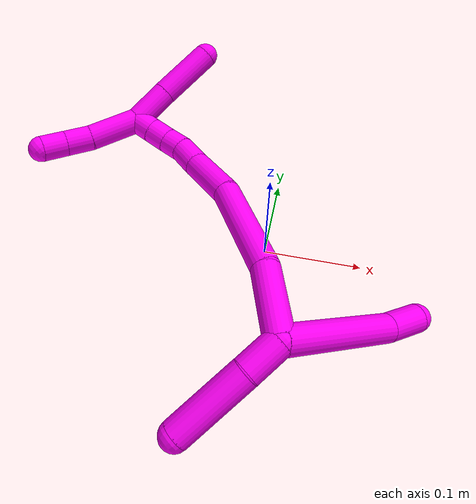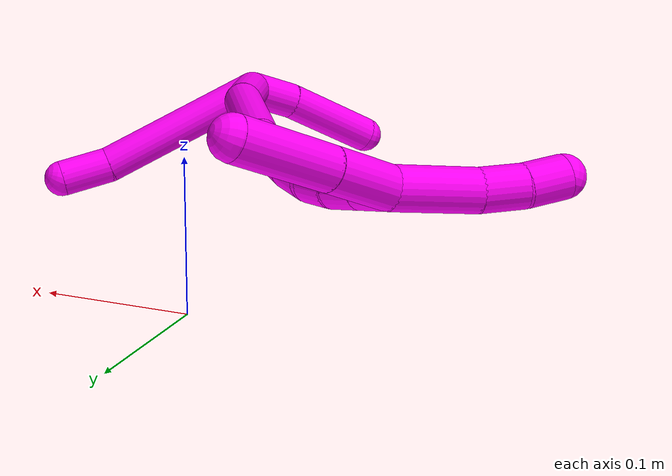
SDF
<sdf version="1.7">
 <world name="default">
  <model name="10">
   <static>0</static>
   <link name="10">
    <collision name="collision-cylinder-e_1_2_8">
     <pose>0.043213 -0.003716 0.038393 0.096478 0.842079 0.043232</pose>
     <geometry><cylinder><radius>0.0125</radius><length>0.115847</length></cylinder></geometry>
     <surface>
      <friction><ode><mu>1.16</mu><mu2>1.16</mu2><slip1>0</slip1><slip2>0</slip2></ode></friction>
      <contact><ode><kp>1e+06</kp><kd>1</kd><max_vel>0</max_vel><min_depth>0.001</min_depth></ode></contact>
     </surface>
    </collision>
    <visual name="visual-cylinder-e_1_2_8">
     <pose>0.043213 -0.003716 0.038393 0.096478 0.842079 0.043232</pose>
     <geometry><cylinder><radius>0.0125</radius><length>0.115847</length></cylinder></geometry>
     <material><ambient>1 0 0.964706 1</ambient></material>
    </visual>
    <collision name="collision-cylinder-e_2_8_6">
     <pose>0.096374 -0.008454 0.090626 0.073746 0.621932 0.023711</pose>
     <geometry><cylinder><radius>0.0125</radius><length>0.034153</length></cylinder></geometry>
     <surface>
      <friction><ode><mu>1.16</mu><mu2>1.16</mu2><slip1>0</slip1><slip2>0</slip2></ode></friction>
      <contact><ode><kp>1e+06</kp><kd>1</kd><max_vel>0</max_vel><min_depth>0.001</min_depth></ode></contact>
     </surface>
    </collision>
    <visual name="visual-cylinder-e_2_8_6">
     <pose>0.096374 -0.008454 0.090626 0.073746 0.621932 0.023711</pose>
     <geometry><cylinder><radius>0.0125</radius><length>0.034153</length></cylinder></geometry>
     <material><ambient>1 0 0.964706 1</ambient></material>
    </visual>
    <collision name="collision-cylinder-e_1_2_9">
     <pose>-0.00058 -0.000536 -0.016377 3.10886 -0.035411 -1.6494</pose>
     <geometry><cylinder><radius>0.0125</radius><length>0.032792</length></cylinder></geometry>
     <surface>
      <friction><ode><mu>1.16</mu><mu2>1.16</mu2><slip1>0</slip1><slip2>0</slip2></ode></friction>
      <contact><ode><kp>1e+06</kp><kd>1</kd><max_vel>0</max_vel><min_depth>0.001</min_depth></ode></contact>
     </surface>
    </collision>
    <visual name="visual-cylinder-e_1_2_9">
     <pose>-0.00058 -0.000536 -0.016377 3.10886 -0.035411 -1.6494</pose>
     <geometry><cylinder><radius>0.0125</radius><length>0.032792</length></cylinder></geometry>
     <material><ambient>1 0 0.964706 1</ambient></material>
    </visual>
    <collision name="collision-cylinder-e_2_9_5">
     <pose>0.001496 0.000456 -0.066218 -3.09596 0.079139 -2.09582</pose>
     <geometry><cylinder><radius>0.0125</radius><length>0.067208</length></cylinder></geometry>
     <surface>
      <friction><ode><mu>1.16</mu><mu2>1.16</mu2><slip1>0</slip1><slip2>0</slip2></ode></friction>
      <contact><ode><kp>1e+06</kp><kd>1</kd><max_vel>0</max_vel><min_depth>0.001</min_depth></ode></contact>
     </surface>
    </collision>
    <visual name="visual-cylinder-e_2_9_5">
     <pose>0.001496 0.000456 -0.066218 -3.09596 0.079139 -2.09582</pose>
     <geometry><cylinder><radius>0.0125</radius><length>0.067208</length></cylinder></geometry>
     <material><ambient>1 0 0.964706 1</ambient></material>
    </visual>
    <collision name="collision-cylinder-e_1_2_10">
     <pose>-0.000274 0.028273 0.015081 -1.08077 -0.008537 0.005122</pose>
     <geometry><cylinder><radius>0.0125</radius><length>0.064089</length></cylinder></geometry>
     <surface>
      <friction><ode><mu>1.16</mu><mu2>1.16</mu2><slip1>0</slip1><slip2>0</slip2></ode></friction>
      <contact><ode><kp>1e+06</kp><kd>1</kd><max_vel>0</max_vel><min_depth>0.001</min_depth></ode></contact>
     </surface>
    </collision>
    <visual name="visual-cylinder-e_1_2_10">
     <pose>-0.000274 0.028273 0.015081 -1.08077 -0.008537 0.005122</pose>
     <geometry><cylinder><radius>0.0125</radius><length>0.064089</length></cylinder></geometry>
     <material><ambient>1 0 0.964706 1</ambient></material>
    </visual>
    <collision name="collision-cylinder-e_2_10_11">
     <pose>-0.000136 0.102138 0.041991 -1.31696 0.008728 -0.006753</pose>
     <geometry><cylinder><radius>0.0125</radius><length>0.094209</length></cylinder></geometry>
     <surface>
      <friction><ode><mu>1.16</mu><mu2>1.16</mu2><slip1>0</slip1><slip2>0</slip2></ode></friction>
      <contact><ode><kp>1e+06</kp><kd>1</kd><max_vel>0</max_vel><min_depth>0.001</min_depth></ode></contact>
     </surface>
    </collision>
    <visual name="visual-cylinder-e_2_10_11">
     <pose>-0.000136 0.102138 0.041991 -1.31696 0.008728 -0.006753</pose>
     <geometry><cylinder><radius>0.0125</radius><length>0.094209</length></cylinder></geometry>
     <material><ambient>1 0 0.964706 1</ambient></material>
    </visual>
    <collision name="collision-cylinder-e_3_11_12">
     <pose>8.6e-05 0.1742 0.05414 -1.55868 -0.007148 0.007061</pose>
     <geometry><cylinder><radius>0.0125</radius><length>0.052942</length></cylinder></geometry>
     <surface>
      <friction><ode><mu>1.16</mu><mu2>1.16</mu2><slip1>0</slip1><slip2>0</slip2></ode></friction>
      <contact><ode><kp>1e+06</kp><kd>1</kd><max_vel>0</max_vel><min_depth>0.001</min_depth></ode></contact>
     </surface>
    </collision>
    <visual name="visual-cylinder-e_3_11_12">
     <pose>8.6e-05 0.1742 0.05414 -1.55868 -0.007148 0.007061</pose>
     <geometry><cylinder><radius>0.0125</radius><length>0.052942</length></cylinder></geometry>
     <material><ambient>1 0 0.964706 1</ambient></material>
    </visual>
    <collision name="collision-cylinder-e_4_12_13">
     <pose>-0.001733 0.214409 0.054921 -1.53732 -0.118014 0.114136</pose>
     <geometry><cylinder><radius>0.0125</radius><length>0.02769</length></cylinder></geometry>
     <surface>
      <friction><ode><mu>1.16</mu><mu2>1.16</mu2><slip1>0</slip1><slip2>0</slip2></ode></friction>
      <contact><ode><kp>1e+06</kp><kd>1</kd><max_vel>0</max_vel><min_depth>0.001</min_depth></ode></contact>
     </surface>
    </collision>
    <visual name="visual-cylinder-e_4_12_13">
     <pose>-0.001733 0.214409 0.054921 -1.53732 -0.118014 0.114136</pose>
     <geometry><cylinder><radius>0.0125</radius><length>0.02769</length></cylinder></geometry>
     <material><ambient>1 0 0.964706 1</ambient></material>
    </visual>
    <collision name="collision-cylinder-e_5_13_14">
     <pose>-0.006024 0.237558 0.053258 -1.7927 -0.269182 0.335543</pose>
     <geometry><cylinder><radius>0.0125</radius><length>0.020009</length></cylinder></geometry>
     <surface>
      <friction><ode><mu>1.16</mu><mu2>1.16</mu2><slip1>0</slip1><slip2>0</slip2></ode></friction>
      <contact><ode><kp>1e+06</kp><kd>1</kd><max_vel>0</max_vel><min_depth>0.001</min_depth></ode></contact>
     </surface>
    </collision>
    <visual name="visual-cylinder-e_5_13_14">
     <pose>-0.006024 0.237558 0.053258 -1.7927 -0.269182 0.335543</pose>
     <geometry><cylinder><radius>0.0125</radius><length>0.020009</length></cylinder></geometry>
     <material><ambient>1 0 0.964706 1</ambient></material>
    </visual>
    <collision name="collision-cylinder-e_6_14_15">
     <pose>-0.012852 0.255897 0.048822 -1.82435 -0.424285 0.54288</pose>
     <geometry><cylinder><radius>0.0125</radius><length>0.020247</length></cylinder></geometry>
     <surface>
      <friction><ode><mu>1.16</mu><mu2>1.16</mu2><slip1>0</slip1><slip2>0</slip2></ode></friction>
      <contact><ode><kp>1e+06</kp><kd>1</kd><max_vel>0</max_vel><min_depth>0.001</min_depth></ode></contact>
     </surface>
    </collision>
    <visual name="visual-cylinder-e_6_14_15">
     <pose>-0.012852 0.255897 0.048822 -1.82435 -0.424285 0.54288</pose>
     <geometry><cylinder><radius>0.0125</radius><length>0.020247</length></cylinder></geometry>
     <material><ambient>1 0 0.964706 1</ambient></material>
    </visual>
    <collision name="collision-cylinder-e_7_15_1">
     <pose>-0.021305 0.274004 0.044112 -1.82615 -0.424365 0.543941</pose>
     <geometry><cylinder><radius>0.0125</radius><length>0.020814</length></cylinder></geometry>
     <surface>
      <friction><ode><mu>1.16</mu><mu2>1.16</mu2><slip1>0</slip1><slip2>0</slip2></ode></friction>
      <contact><ode><kp>1e+06</kp><kd>1</kd><max_vel>0</max_vel><min_depth>0.001</min_depth></ode></contact>
     </surface>
    </collision>
    <visual name="visual-cylinder-e_7_15_1">
     <pose>-0.021305 0.274004 0.044112 -1.82615 -0.424365 0.543941</pose>
     <geometry><cylinder><radius>0.0125</radius><length>0.020814</length></cylinder></geometry>
     <material><ambient>1 0 0.964706 1</ambient></material>
    </visual>
    <collision name="collision-cylinder-e_1_1_16">
     <pose>-0.026131 0.285744 0.061821 -0.126822 -0.026689 0.001695</pose>
     <geometry><cylinder><radius>0.0125</radius><length>0.040549</length></cylinder></geometry>
     <surface>
      <friction><ode><mu>1.16</mu><mu2>1.16</mu2><slip1>0</slip1><slip2>0</slip2></ode></friction>
      <contact><ode><kp>1e+06</kp><kd>1</kd><max_vel>0</max_vel><min_depth>0.001</min_depth></ode></contact>
     </surface>
    </collision>
    <visual name="visual-cylinder-e_1_1_16">
     <pose>-0.026131 0.285744 0.061821 -0.126822 -0.026689 0.001695</pose>
     <geometry><cylinder><radius>0.0125</radius><length>0.040549</length></cylinder></geometry>
     <material><ambient>1 0 0.964706 1</ambient></material>
    </visual>
    <collision name="collision-cylinder-e_2_16_4">
     <pose>-0.027087 0.290958 0.11153 -0.089278 -0.013958 0.000623</pose>
     <geometry><cylinder><radius>0.0125</radius><length>0.059451</length></cylinder></geometry>
     <surface>
      <friction><ode><mu>1.16</mu><mu2>1.16</mu2><slip1>0</slip1><slip2>0</slip2></ode></friction>
      <contact><ode><kp>1e+06</kp><kd>1</kd><max_vel>0</max_vel><min_depth>0.001</min_depth></ode></contact>
     </surface>
    </collision>
    <visual name="visual-cylinder-e_2_16_4">
     <pose>-0.027087 0.290958 0.11153 -0.089278 -0.013958 0.000623</pose>
     <geometry><cylinder><radius>0.0125</radius><length>0.059451</length></cylinder></geometry>
     <material><ambient>1 0 0.964706 1</ambient></material>
    </visual>
    <collision name="collision-cylinder-e_1_1_17">
     <pose>-0.032924 0.285926 0.017987 -3.02641 -0.297888 2.4079</pose>
     <geometry><cylinder><radius>0.0125</radius><length>0.049977</length></cylinder></geometry>
     <surface>
      <friction><ode><mu>1.16</mu><mu2>1.16</mu2><slip1>0</slip1><slip2>0</slip2></ode></friction>
      <contact><ode><kp>1e+06</kp><kd>1</kd><max_vel>0</max_vel><min_depth>0.001</min_depth></ode></contact>
     </surface>
    </collision>
    <visual name="visual-cylinder-e_1_1_17">
     <pose>-0.032924 0.285926 0.017987 -3.02641 -0.297888 2.4079</pose>
     <geometry><cylinder><radius>0.0125</radius><length>0.049977</length></cylinder></geometry>
     <material><ambient>1 0 0.964706 1</ambient></material>
    </visual>
    <collision name="collision-cylinder-e_2_17_18">
     <pose>-0.045756 0.290504 -0.017307 -2.98447 -0.439013 2.46316</pose>
     <geometry><cylinder><radius>0.0125</radius><length>0.025869</length></cylinder></geometry>
     <surface>
      <friction><ode><mu>1.16</mu><mu2>1.16</mu2><slip1>0</slip1><slip2>0</slip2></ode></friction>
      <contact><ode><kp>1e+06</kp><kd>1</kd><max_vel>0</max_vel><min_depth>0.001</min_depth></ode></contact>
     </surface>
    </collision>
    <visual name="visual-cylinder-e_2_17_18">
     <pose>-0.045756 0.290504 -0.017307 -2.98447 -0.439013 2.46316</pose>
     <geometry><cylinder><radius>0.0125</radius><length>0.025869</length></cylinder></geometry>
     <material><ambient>1 0 0.964706 1</ambient></material>
    </visual>
    <collision name="collision-cylinder-e_3_18_3">
     <pose>-0.057254 0.292485 -0.03935 -3.12735 -0.519959 3.08805</pose>
     <geometry><cylinder><radius>0.0125</radius><length>0.024154</length></cylinder></geometry>
     <surface>
      <friction><ode><mu>1.16</mu><mu2>1.16</mu2><slip1>0</slip1><slip2>0</slip2></ode></friction>
      <contact><ode><kp>1e+06</kp><kd>1</kd><max_vel>0</max_vel><min_depth>0.001</min_depth></ode></contact>
     </surface>
    </collision>
    <visual name="visual-cylinder-e_3_18_3">
     <pose>-0.057254 0.292485 -0.03935 -3.12735 -0.519959 3.08805</pose>
     <geometry><cylinder><radius>0.0125</radius><length>0.024154</length></cylinder></geometry>
     <material><ambient>1 0 0.964706 1</ambient></material>
    </visual>
    <collision name="collision-sphere-3">
     <pose>-0.063254 0.292634 -0.04983 0 -0 0</pose>
     <geometry><sphere><radius>0.0125</radius></sphere></geometry>
     <surface>
      <friction><ode><mu>1.16</mu><mu2>1.16</mu2><slip1>0</slip1><slip2>0</slip2></ode></friction>
      <contact><ode><kp>1e+06</kp><kd>1</kd><max_vel>0</max_vel><min_depth>0.001</min_depth></ode></contact>
     </surface>
    </collision>
    <visual name="visual-sphere-3">
     <pose>-0.063254 0.292634 -0.04983 0 -0 0</pose>
     <geometry><sphere><radius>0.0125</radius></sphere></geometry>
     <material><ambient>1 0 0.964706 1</ambient></material>
    </visual>
    <collision name="collision-sphere-10">
     <pose>-0.000547 0.056545 0.030162 0 -0 0</pose>
     <geometry><sphere><radius>0.0125</radius></sphere></geometry>
     <surface>
      <friction><ode><mu>1.16</mu><mu2>1.16</mu2><slip1>0</slip1><slip2>0</slip2></ode></friction>
      <contact><ode><kp>1e+06</kp><kd>1</kd><max_vel>0</max_vel><min_depth>0.001</min_depth></ode></contact>
     </surface>
    </collision>
    <visual name="visual-sphere-10">
     <pose>-0.000547 0.056545 0.030162 0 -0 0</pose>
     <geometry><sphere><radius>0.0125</radius></sphere></geometry>
     <material><ambient>1 0 0.964706 1</ambient></material>
    </visual>
    <collision name="collision-sphere-5">
     <pose>0.004152 0.001984 -0.099682 0 -0 0</pose>
     <geometry><sphere><radius>0.0125</radius></sphere></geometry>
     <surface>
      <friction><ode><mu>1.16</mu><mu2>1.16</mu2><slip1>0</slip1><slip2>0</slip2></ode></friction>
      <contact><ode><kp>1e+06</kp><kd>1</kd><max_vel>0</max_vel><min_depth>0.001</min_depth></ode></contact>
     </surface>
    </collision>
    <visual name="visual-sphere-5">
     <pose>0.004152 0.001984 -0.099682 0 -0 0</pose>
     <geometry><sphere><radius>0.0125</radius></sphere></geometry>
     <material><ambient>1 0 0.964706 1</ambient></material>
    </visual>
    <collision name="collision-sphere-6">
     <pose>0.106323 -0.009476 0.104468 0 -0 0</pose>
     <geometry><sphere><radius>0.0125</radius></sphere></geometry>
     <surface>
      <friction><ode><mu>1.16</mu><mu2>1.16</mu2><slip1>0</slip1><slip2>0</slip2></ode></friction>
      <contact><ode><kp>1e+06</kp><kd>1</kd><max_vel>0</max_vel><min_depth>0.001</min_depth></ode></contact>
     </surface>
    </collision>
    <visual name="visual-sphere-6">
     <pose>0.106323 -0.009476 0.104468 0 -0 0</pose>
     <geometry><sphere><radius>0.0125</radius></sphere></geometry>
     <material><ambient>1 0 0.964706 1</ambient></material>
    </visual>
    <collision name="collision-sphere-9">
     <pose>-0.001161 -0.001072 -0.032754 0 -0 0</pose>
     <geometry><sphere><radius>0.0125</radius></sphere></geometry>
     <surface>
      <friction><ode><mu>1.16</mu><mu2>1.16</mu2><slip1>0</slip1><slip2>0</slip2></ode></friction>
      <contact><ode><kp>1e+06</kp><kd>1</kd><max_vel>0</max_vel><min_depth>0.001</min_depth></ode></contact>
     </surface>
    </collision>
    <visual name="visual-sphere-9">
     <pose>-0.001161 -0.001072 -0.032754 0 -0 0</pose>
     <geometry><sphere><radius>0.0125</radius></sphere></geometry>
     <material><ambient>1 0 0.964706 1</ambient></material>
    </visual>
    <collision name="collision-sphere-2">
     <geometry><sphere><radius>0.0125</radius></sphere></geometry>
     <surface>
      <friction><ode><mu>1.16</mu><mu2>1.16</mu2><slip1>0</slip1><slip2>0</slip2></ode></friction>
      <contact><ode><kp>1e+06</kp><kd>1</kd><max_vel>0</max_vel><min_depth>0.001</min_depth></ode></contact>
     </surface>
    </collision>
    <visual name="visual-sphere-2">
     <geometry><sphere><radius>0.0125</radius></sphere></geometry>
     <material><ambient>1 0 0.964706 1</ambient></material>
    </visual>
    <collision name="collision-sphere-8">
     <pose>0.086425 -0.007431 0.076785 0 -0 0</pose>
     <geometry><sphere><radius>0.0125</radius></sphere></geometry>
     <surface>
      <friction><ode><mu>1.16</mu><mu2>1.16</mu2><slip1>0</slip1><slip2>0</slip2></ode></friction>
      <contact><ode><kp>1e+06</kp><kd>1</kd><max_vel>0</max_vel><min_depth>0.001</min_depth></ode></contact>
     </surface>
    </collision>
    <visual name="visual-sphere-8">
     <pose>0.086425 -0.007431 0.076785 0 -0 0</pose>
     <geometry><sphere><radius>0.0125</radius></sphere></geometry>
     <material><ambient>1 0 0.964706 1</ambient></material>
    </visual>
    <collision name="collision-sphere-11">
     <pose>0.000275 0.147732 0.053819 0 -0 0</pose>
     <geometry><sphere><radius>0.0125</radius></sphere></geometry>
     <surface>
      <friction><ode><mu>1.16</mu><mu2>1.16</mu2><slip1>0</slip1><slip2>0</slip2></ode></friction>
      <contact><ode><kp>1e+06</kp><kd>1</kd><max_vel>0</max_vel><min_depth>0.001</min_depth></ode></contact>
     </surface>
    </collision>
    <visual name="visual-sphere-11">
     <pose>0.000275 0.147732 0.053819 0 -0 0</pose>
     <geometry><sphere><radius>0.0125</radius></sphere></geometry>
     <material><ambient>1 0 0.964706 1</ambient></material>
    </visual>
    <collision name="collision-sphere-12">
     <pose>-0.000103 0.200668 0.054461 0 -0 0</pose>
     <geometry><sphere><radius>0.0125</radius></sphere></geometry>
     <surface>
      <friction><ode><mu>1.16</mu><mu2>1.16</mu2><slip1>0</slip1><slip2>0</slip2></ode></friction>
      <contact><ode><kp>1e+06</kp><kd>1</kd><max_vel>0</max_vel><min_depth>0.001</min_depth></ode></contact>
     </surface>
    </collision>
    <visual name="visual-sphere-12">
     <pose>-0.000103 0.200668 0.054461 0 -0 0</pose>
     <geometry><sphere><radius>0.0125</radius></sphere></geometry>
     <material><ambient>1 0 0.964706 1</ambient></material>
    </visual>
    <collision name="collision-sphere-13">
     <pose>-0.003363 0.22815 0.055381 0 -0 0</pose>
     <geometry><sphere><radius>0.0125</radius></sphere></geometry>
     <surface>
      <friction><ode><mu>1.16</mu><mu2>1.16</mu2><slip1>0</slip1><slip2>0</slip2></ode></friction>
      <contact><ode><kp>1e+06</kp><kd>1</kd><max_vel>0</max_vel><min_depth>0.001</min_depth></ode></contact>
     </surface>
    </collision>
    <visual name="visual-sphere-13">
     <pose>-0.003363 0.22815 0.055381 0 -0 0</pose>
     <geometry><sphere><radius>0.0125</radius></sphere></geometry>
     <material><ambient>1 0 0.964706 1</ambient></material>
    </visual>
    <collision name="collision-sphere-14">
     <pose>-0.008685 0.246966 0.051136 0 -0 0</pose>
     <geometry><sphere><radius>0.0125</radius></sphere></geometry>
     <surface>
      <friction><ode><mu>1.16</mu><mu2>1.16</mu2><slip1>0</slip1><slip2>0</slip2></ode></friction>
      <contact><ode><kp>1e+06</kp><kd>1</kd><max_vel>0</max_vel><min_depth>0.001</min_depth></ode></contact>
     </surface>
    </collision>
    <visual name="visual-sphere-14">
     <pose>-0.008685 0.246966 0.051136 0 -0 0</pose>
     <geometry><sphere><radius>0.0125</radius></sphere></geometry>
     <material><ambient>1 0 0.964706 1</ambient></material>
    </visual>
    <collision name="collision-sphere-15">
     <pose>-0.01702 0.264828 0.046507 0 -0 0</pose>
     <geometry><sphere><radius>0.0125</radius></sphere></geometry>
     <surface>
      <friction><ode><mu>1.16</mu><mu2>1.16</mu2><slip1>0</slip1><slip2>0</slip2></ode></friction>
      <contact><ode><kp>1e+06</kp><kd>1</kd><max_vel>0</max_vel><min_depth>0.001</min_depth></ode></contact>
     </surface>
    </collision>
    <visual name="visual-sphere-15">
     <pose>-0.01702 0.264828 0.046507 0 -0 0</pose>
     <geometry><sphere><radius>0.0125</radius></sphere></geometry>
     <material><ambient>1 0 0.964706 1</ambient></material>
    </visual>
    <collision name="collision-sphere-1">
     <pose>-0.02559 0.283181 0.041716 0 -0 0</pose>
     <geometry><sphere><radius>0.0125</radius></sphere></geometry>
     <surface>
      <friction><ode><mu>1.16</mu><mu2>1.16</mu2><slip1>0</slip1><slip2>0</slip2></ode></friction>
      <contact><ode><kp>1e+06</kp><kd>1</kd><max_vel>0</max_vel><min_depth>0.001</min_depth></ode></contact>
     </surface>
    </collision>
    <visual name="visual-sphere-1">
     <pose>-0.02559 0.283181 0.041716 0 -0 0</pose>
     <geometry><sphere><radius>0.0125</radius></sphere></geometry>
     <material><ambient>1 0 0.964706 1</ambient></material>
    </visual>
    <collision name="collision-sphere-18">
     <pose>-0.051254 0.292336 -0.028871 0 -0 0</pose>
     <geometry><sphere><radius>0.0125</radius></sphere></geometry>
     <surface>
      <friction><ode><mu>1.16</mu><mu2>1.16</mu2><slip1>0</slip1><slip2>0</slip2></ode></friction>
      <contact><ode><kp>1e+06</kp><kd>1</kd><max_vel>0</max_vel><min_depth>0.001</min_depth></ode></contact>
     </surface>
    </collision>
    <visual name="visual-sphere-18">
     <pose>-0.051254 0.292336 -0.028871 0 -0 0</pose>
     <geometry><sphere><radius>0.0125</radius></sphere></geometry>
     <material><ambient>1 0 0.964706 1</ambient></material>
    </visual>
    <collision name="collision-sphere-16">
     <pose>-0.026672 0.288308 0.081926 0 -0 0</pose>
     <geometry><sphere><radius>0.0125</radius></sphere></geometry>
     <surface>
      <friction><ode><mu>1.16</mu><mu2>1.16</mu2><slip1>0</slip1><slip2>0</slip2></ode></friction>
      <contact><ode><kp>1e+06</kp><kd>1</kd><max_vel>0</max_vel><min_depth>0.001</min_depth></ode></contact>
     </surface>
    </collision>
    <visual name="visual-sphere-16">
     <pose>-0.026672 0.288308 0.081926 0 -0 0</pose>
     <geometry><sphere><radius>0.0125</radius></sphere></geometry>
     <material><ambient>1 0 0.964706 1</ambient></material>
    </visual>
    <collision name="collision-sphere-4">
     <pose>-0.027502 0.293608 0.141134 0 -0 0</pose>
     <geometry><sphere><radius>0.0125</radius></sphere></geometry>
     <surface>
      <friction><ode><mu>1.16</mu><mu2>1.16</mu2><slip1>0</slip1><slip2>0</slip2></ode></friction>
      <contact><ode><kp>1e+06</kp><kd>1</kd><max_vel>0</max_vel><min_depth>0.001</min_depth></ode></contact>
     </surface>
    </collision>
    <visual name="visual-sphere-4">
     <pose>-0.027502 0.293608 0.141134 0 -0 0</pose>
     <geometry><sphere><radius>0.0125</radius></sphere></geometry>
     <material><ambient>1 0 0.964706 1</ambient></material>
    </visual>
    <collision name="collision-sphere-17">
     <pose>-0.040258 0.288672 -0.005743 0 -0 0</pose>
     <geometry><sphere><radius>0.0125</radius></sphere></geometry>
     <surface>
      <friction><ode><mu>1.16</mu><mu2>1.16</mu2><slip1>0</slip1><slip2>0</slip2></ode></friction>
      <contact><ode><kp>1e+06</kp><kd>1</kd><max_vel>0</max_vel><min_depth>0.001</min_depth></ode></contact>
     </surface>
    </collision>
    <visual name="visual-sphere-17">
     <pose>-0.040258 0.288672 -0.005743 0 -0 0</pose>
     <geometry><sphere><radius>0.0125</radius></sphere></geometry>
     <material><ambient>1 0 0.964706 1</ambient></material>
    </visual>
    <inertial>
     <pose>0.000799 0.132372 0.0313 0 -0 0</pose>
     <mass>0.75</mass>
     <inertia>
      <ixx>0.000203</ixx>
      <ixy>0</ixy>
      <ixz>0</ixz>
      <iyy>0.000233</iyy>
      <iyz>0</iyz>
      <izz>-0.000203</izz>
     </inertia>
    </inertial>
   </link>
   <pose>0.03381 -0.171963 0.107593 -0.332517 1.16253 0.473129</pose>
  </model>
 </world>
</sdf>
